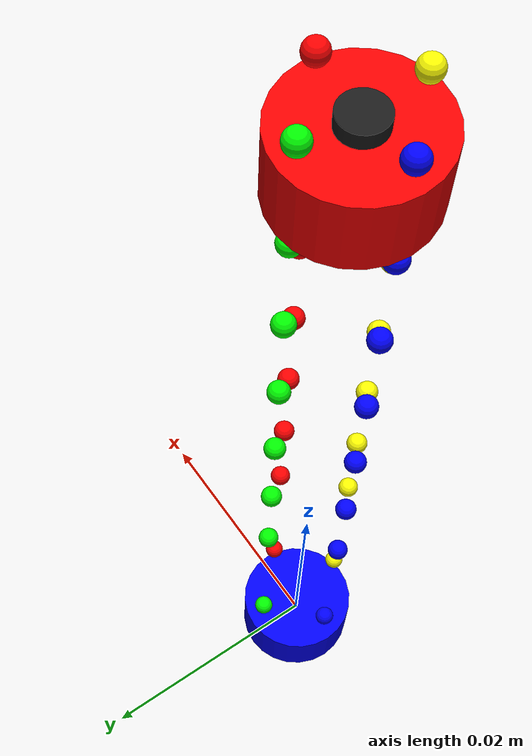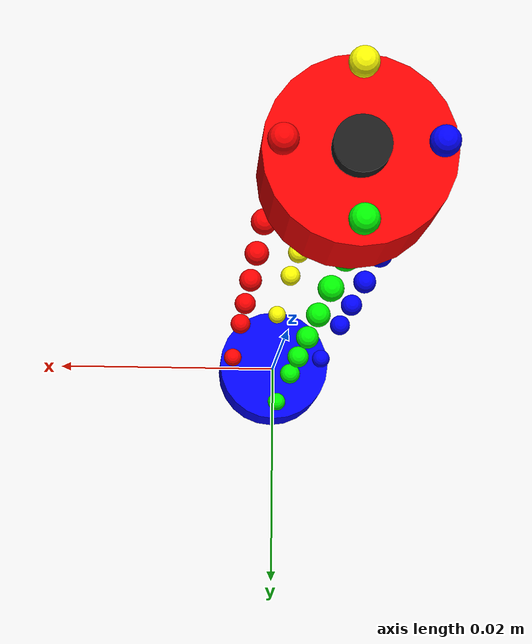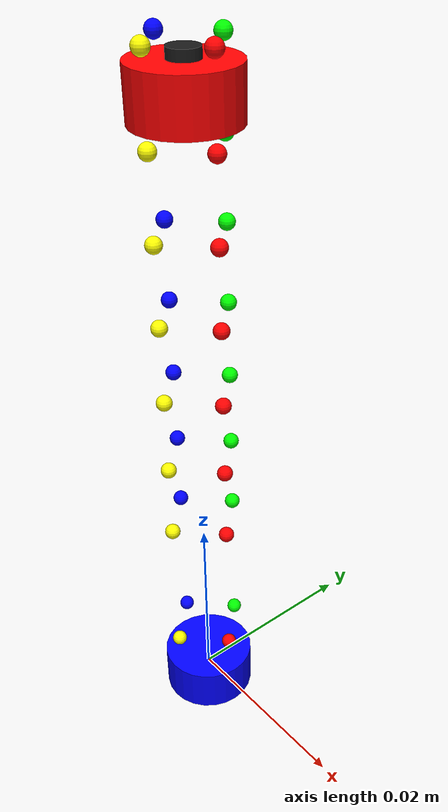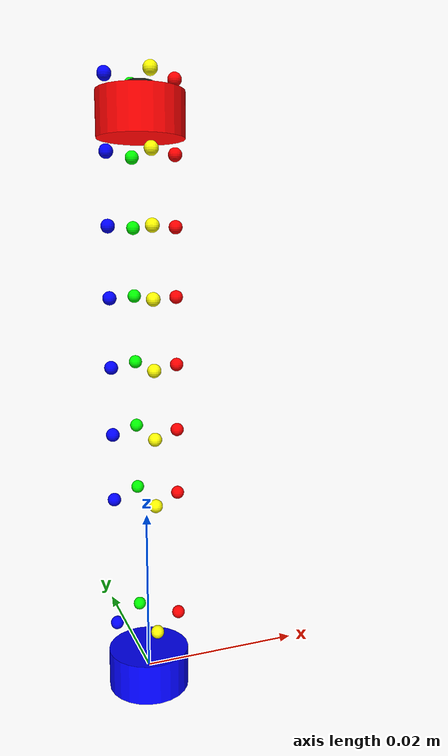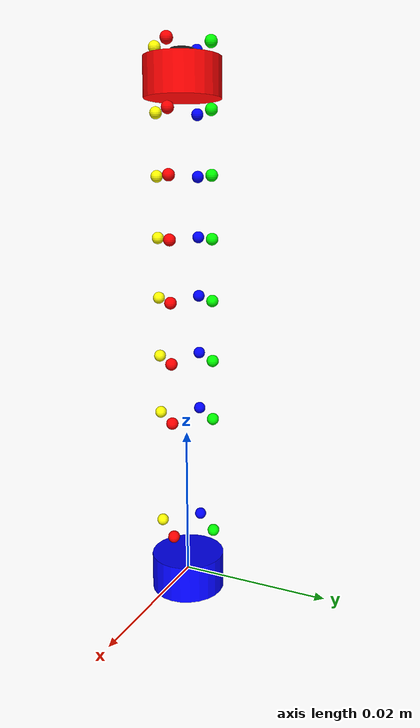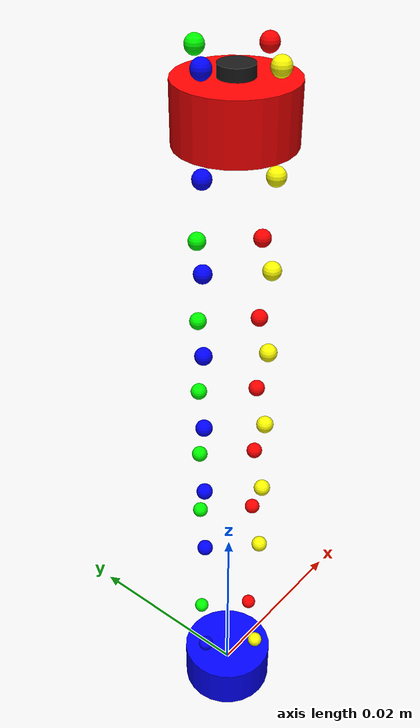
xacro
<?xml version="1.0"?>
<robot xmlns:xacro="http://www.ros.org/wiki/xacro" name="endo_flex">

  <!-- ============ Parameters ============ -->
  <xacro:arg name="show_tube" default="false"/>
  <xacro:property name="SHOW_TUBE" value="$(arg show_tube)"/>

  <xacro:property name="N"           value="8"/>
  <xacro:property name="SEG_LEN"     value="0.008"/>
  <xacro:property name="SEG_RADIUS"  value="0.0015"/>
  <xacro:property name="CYL_RADIUS"  value="0.005"/>
  <xacro:property name="CYL_LEN"     value="0.005"/>
  <xacro:property name="MAX_BEND"    value="1.57079632679"/>
  <xacro:property name="PER_BEND_MAX" value="${MAX_BEND/(N-1)}"/>

  <xacro:property name="TENDON_R"     value="0.004"/>
  <xacro:property name="TENDON_VIS_R" value="0.0008"/>

  <!-- ============ Materials (global) ============ -->
  <material name="blue"><color rgba="0.0 0.0 1.0 1.0"/></material>
  <material name="red" ><color rgba="1.0 0.0 0.0 1.0"/></material>
  <material name="camera_black"><color rgba="0.1 0.1 0.1 1.0"/></material>
  <material name="tendon_red"   ><color rgba="1.0 0.0 0.0 1.0"/></material>
  <material name="tendon_green" ><color rgba="0.0 1.0 0.0 1.0"/></material>
  <material name="tendon_blue"  ><color rgba="0.0 0.0 1.0 1.0"/></material>
  <material name="tendon_yellow"><color rgba="1.0 1.0 0.0 1.0"/></material>

  <xacro:macro name="flex_joint_position_controller" params="joint_name topic_name">
    <gazebo>
      <plugin filename="gz-sim-joint-position-controller-system"
              name="gz::sim::systems::JointPositionController">
        <joint_name>${joint_name}</joint_name>
        <topic>${topic_name}</topic>
        <use_velocity_commands>true</use_velocity_commands>
        <p_gain>20.0</p_gain>
        <i_gain>0.0</i_gain>
        <d_gain>0.0</d_gain>
        <cmd_max>10.0</cmd_max>
        <cmd_min>-10.0</cmd_min>
        <initial_position>0.0</initial_position>
      </plugin>
    </gazebo>
  </xacro:macro>

  <!-- ================================================================
       Tendon markers as SEPARATE LINKS.
       ================================================================ -->
  <xacro:macro name="tendon_marker_link" params="parent_link x_off y_off z_off tag name material_name">
    <link name="tendon_${name}_${tag}">
      <visual>
        <geometry><sphere radius="${TENDON_VIS_R}"/></geometry>
        <material name="${material_name}"/>
      </visual>
      <inertial>
        <mass value="1e-9"/>
        <inertia ixx="1e-15" ixy="0" ixz="0" iyy="1e-15" iyz="0" izz="1e-15"/>
      </inertial>
    </link>
    <joint name="tendon_${name}_${tag}_joint" type="fixed">
      <parent link="${parent_link}"/>
      <child link="tendon_${name}_${tag}"/>
      <origin xyz="${x_off} ${y_off} ${z_off}" rpy="0 0 0"/>
    </joint>
  </xacro:macro>

  <!-- ================================================================
       Optional blue tube visual (toggled by show_tube arg)
       ================================================================ -->
  <xacro:macro name="segment_tube_visual">
    <xacro:if value="$(arg show_tube)">
      <visual>
        <origin xyz="0 0 ${SEG_LEN/2}"/>
        <geometry><cylinder radius="${SEG_RADIUS}" length="${SEG_LEN}"/></geometry>
        <material name="blue"/>
      </visual>
    </xacro:if>
  </xacro:macro>

  <!-- ============ Root ============ -->
  <link name="flex_base_link"/>

  <joint name="base_fixed" type="fixed">
    <parent link="flex_base_link"/>
    <child link="start_cylinder"/>
  </joint>

  <link name="start_cylinder">
    <visual>
      <geometry><cylinder radius="${CYL_RADIUS}" length="${CYL_LEN}"/></geometry>
      <material name="blue"/>
    </visual>
    <inertial>
      <mass value="0.001"/>
      <inertia ixx="1e-6" ixy="0" ixz="0" iyy="1e-6" iyz="0" izz="1e-6"/>
    </inertial>
  </link>

  <joint name="base_yaw" type="revolute">
    <parent link="start_cylinder"/>
    <child link="yaw_base"/>
    <origin xyz="0 0 ${CYL_LEN/2}" rpy="0 0 0"/>
    <axis xyz="0 0 1"/>
    <limit effort="100" velocity="10" lower="-3.14159" upper="3.14159"/>
    <dynamics damping="0.1" friction="0.01"/>
  </joint>
  <xacro:flex_joint_position_controller joint_name="base_yaw" topic_name="/flex/base_yaw"/>

  <link name="yaw_base">
    <inertial>
      <mass value="1e-3"/>
      <inertia ixx="1e-6" ixy="0" ixz="0" iyy="1e-6" iyz="0" izz="1e-6"/>
    </inertial>
  </link>

  <joint name="seg1_fixed" type="fixed">
    <parent link="yaw_base"/>
    <child link="segment_1"/>
  </joint>

  <!-- Segment 1 -->
  <link name="segment_1">
    <xacro:segment_tube_visual/>
    <inertial>
      <origin xyz="0 0 ${SEG_LEN/2}"/>
      <mass value="1e-3"/>
      <inertia ixx="1e-6" ixy="0" ixz="0" iyy="1e-6" iyz="0" izz="1e-6"/>
    </inertial>
  </link>

  <xacro:tendon_marker_link parent_link="segment_1" x_off="${ TENDON_R}" y_off="0"             z_off="${SEG_LEN/2}" tag="s1" name="0"   material_name="tendon_red"/>
  <xacro:tendon_marker_link parent_link="segment_1" x_off="0"             y_off="${ TENDON_R}" z_off="${SEG_LEN/2}" tag="s1" name="90"  material_name="tendon_green"/>
  <xacro:tendon_marker_link parent_link="segment_1" x_off="${-TENDON_R}" y_off="0"             z_off="${SEG_LEN/2}" tag="s1" name="180" material_name="tendon_blue"/>
  <xacro:tendon_marker_link parent_link="segment_1" x_off="0"             y_off="${-TENDON_R}" z_off="${SEG_LEN/2}" tag="s1" name="270" material_name="tendon_yellow"/>

  <!-- ================================================================
       Segment transition
       ================================================================ -->
  <xacro:macro name="seg_joint" params="idx parent origin_z">

    <joint name="ext_yaw_${idx}" type="revolute">
      <parent link="${parent}"/>
      <child link="ext_yaw_mid_${idx}"/>
      <origin xyz="0 0 ${origin_z}" rpy="0 0 0"/>
      <axis xyz="0 0 1"/>
      <limit effort="100" velocity="10" lower="-3.14159" upper="3.14159"/>
      <dynamics damping="0.1" friction="0.01"/>
    </joint>
    <xacro:flex_joint_position_controller joint_name="ext_yaw_${idx}" topic_name="/flex/ext_yaw"/>

    <link name="ext_yaw_mid_${idx}">
      <inertial>
        <mass value="1e-3"/>
        <inertia ixx="1e-6" ixy="0" ixz="0" iyy="1e-6" iyz="0" izz="1e-6"/>
      </inertial>
    </link>

    <joint name="ext_pitch_${idx}" type="revolute">
      <parent link="ext_yaw_mid_${idx}"/>
      <child link="ext_pitch_mid_${idx}"/>
      <origin xyz="0 0 0" rpy="0 0 0"/>
      <axis xyz="0 1 0"/>
      <limit effort="100" velocity="10" lower="${-PER_BEND_MAX}" upper="${PER_BEND_MAX}"/>
      <dynamics damping="0.1" friction="0.01"/>
    </joint>
    <xacro:flex_joint_position_controller joint_name="ext_pitch_${idx}" topic_name="/flex/ext_pitch"/>

    <link name="ext_pitch_mid_${idx}">
      <inertial>
        <mass value="1e-3"/>
        <inertia ixx="1e-6" ixy="0" ixz="0" iyy="1e-6" iyz="0" izz="1e-6"/>
      </inertial>
    </link>

    <joint name="ext_yaw_back_${idx}" type="revolute">
      <parent link="ext_pitch_mid_${idx}"/>
      <child link="ext_yaw_back_mid_${idx}"/>
      <origin xyz="0 0 0" rpy="0 0 0"/>
      <axis xyz="0 0 1"/>
      <limit effort="100" velocity="10" lower="-3.14159" upper="3.14159"/>
      <dynamics damping="0.1" friction="0.01"/>
    </joint>
    <xacro:flex_joint_position_controller joint_name="ext_yaw_back_${idx}" topic_name="/flex/ext_yaw_back"/>

    <link name="ext_yaw_back_mid_${idx}">
      <inertial>
        <mass value="1e-3"/>
        <inertia ixx="1e-6" ixy="0" ixz="0" iyy="1e-6" iyz="0" izz="1e-6"/>
      </inertial>
    </link>

    <joint name="extension_${idx}" type="fixed">
      <parent link="ext_yaw_back_mid_${idx}"/>
      <child link="segment_${idx+1}"/>
      <origin xyz="0 0 ${SEG_LEN}" rpy="0 0 0"/>
    </joint>

    <link name="segment_${idx+1}">
      <xacro:segment_tube_visual/>
      <inertial>
        <origin xyz="0 0 ${SEG_LEN/2}"/>
        <mass value="1e-3"/>
        <inertia ixx="1e-6" ixy="0" ixz="0" iyy="1e-6" iyz="0" izz="1e-6"/>
      </inertial>
    </link>

    <xacro:tendon_marker_link parent_link="segment_${idx+1}" x_off="${ TENDON_R}" y_off="0"             z_off="${SEG_LEN/2}" tag="s${idx+1}" name="0"   material_name="tendon_red"/>
    <xacro:tendon_marker_link parent_link="segment_${idx+1}" x_off="0"             y_off="${ TENDON_R}" z_off="${SEG_LEN/2}" tag="s${idx+1}" name="90"  material_name="tendon_green"/>
    <xacro:tendon_marker_link parent_link="segment_${idx+1}" x_off="${-TENDON_R}" y_off="0"             z_off="${SEG_LEN/2}" tag="s${idx+1}" name="180" material_name="tendon_blue"/>
    <xacro:tendon_marker_link parent_link="segment_${idx+1}" x_off="0"             y_off="${-TENDON_R}" z_off="${SEG_LEN/2}" tag="s${idx+1}" name="270" material_name="tendon_yellow"/>

  </xacro:macro>

  <xacro:seg_joint idx="1" parent="segment_1" origin_z="${SEG_LEN}"/>
  <xacro:seg_joint idx="2" parent="segment_2" origin_z="0"/>
  <xacro:seg_joint idx="3" parent="segment_3" origin_z="0"/>
  <xacro:seg_joint idx="4" parent="segment_4" origin_z="0"/>
  <xacro:seg_joint idx="5" parent="segment_5" origin_z="0"/>
  <xacro:seg_joint idx="6" parent="segment_6" origin_z="0"/>
  <xacro:seg_joint idx="7" parent="segment_7" origin_z="0"/>

  <joint name="end_fixed" type="fixed">
    <parent link="segment_8"/>
    <child link="end_cylinder"/>
    <origin xyz="0 0 0" rpy="0 0 0"/>
  </joint>

  <link name="end_cylinder">
    <visual>
      <geometry><cylinder radius="${CYL_RADIUS}" length="${CYL_LEN}"/></geometry>
      <material name="red"/>
    </visual>
    <inertial>
      <mass value="0.001"/>
      <inertia ixx="1e-6" ixy="0" ixz="0" iyy="1e-6" iyz="0" izz="1e-6"/>
    </inertial>
  </link>

  <xacro:tendon_marker_link parent_link="end_cylinder" x_off="${ TENDON_R}" y_off="0"             z_off="0" tag="end" name="0"   material_name="tendon_red"/>
  <xacro:tendon_marker_link parent_link="end_cylinder" x_off="0"             y_off="${ TENDON_R}" z_off="0" tag="end" name="90"  material_name="tendon_green"/>
  <xacro:tendon_marker_link parent_link="end_cylinder" x_off="${-TENDON_R}" y_off="0"             z_off="0" tag="end" name="180" material_name="tendon_blue"/>
  <xacro:tendon_marker_link parent_link="end_cylinder" x_off="0"             y_off="${-TENDON_R}" z_off="0" tag="end" name="270" material_name="tendon_yellow"/>

  <joint name="end_cylinder_to_camera_joint" type="fixed">
    <parent link="end_cylinder"/>
    <child link="camera_link"/>
    <origin xyz="0 0 ${CYL_LEN/2 + 0.0005}" rpy="0 -1.57079632679 0"/>
  </joint>

  <link name="camera_link">
    <visual>
      <origin xyz="0 0 0" rpy="0 1.57079632679 0"/>
      <geometry><cylinder radius="0.0015" length="0.001"/></geometry>
      <material name="camera_black"/>
    </visual>
    <inertial>
      <mass value="1e-6"/>
      <inertia ixx="1e-12" ixy="0" ixz="0" iyy="1e-12" iyz="0" izz="1e-12"/>
    </inertial>
  </link>

  <!-- Standard ROS camera optical frame (+Z forward, +X right, +Y down) -->
  <joint name="camera_optical_joint" type="fixed">
    <parent link="camera_link"/>
    <child link="camera_optical_frame"/>
    <origin xyz="0 0 0" rpy="-1.57079632679 0 -1.57079632679"/>
  </joint>

  <link name="camera_optical_frame"/>

  <!-- Gazebo Harmonic sensor plugin (loads ogre2 rendering for camera) -->
  <gazebo>
    <plugin filename="gz-sim-sensors-system"
            name="gz::sim::systems::Sensors">
      <render_engine>ogre2</render_engine>
    </plugin>
  </gazebo>

  <gazebo reference="camera_link">
    <sensor name="endoscope_camera" type="camera">
      <always_on>true</always_on>
      <visualize>true</visualize>
      <update_rate>60.0</update_rate>
      <topic>/endoscope_camera/image_raw</topic>
      <gz_frame_id>camera_optical_frame</gz_frame_id>
      <camera name="endoscope_cam">
        <camera_info_topic>/endoscope_camera/camera_info</camera_info_topic>
        <horizontal_fov>2.2689</horizontal_fov>
        <image>
          <width>1500</width>
          <height>1500</height>
          <format>R8G8B8</format>
        </image>
        <clip>
          <near>0.008</near>
          <far>0.5</far>
        </clip>
      </camera>
    </sensor>
  </gazebo>

</robot>
